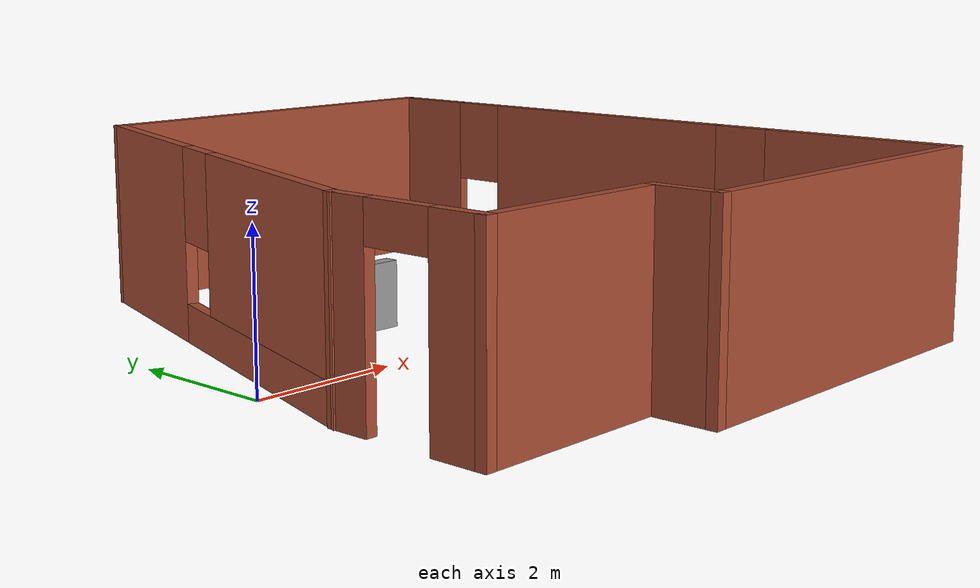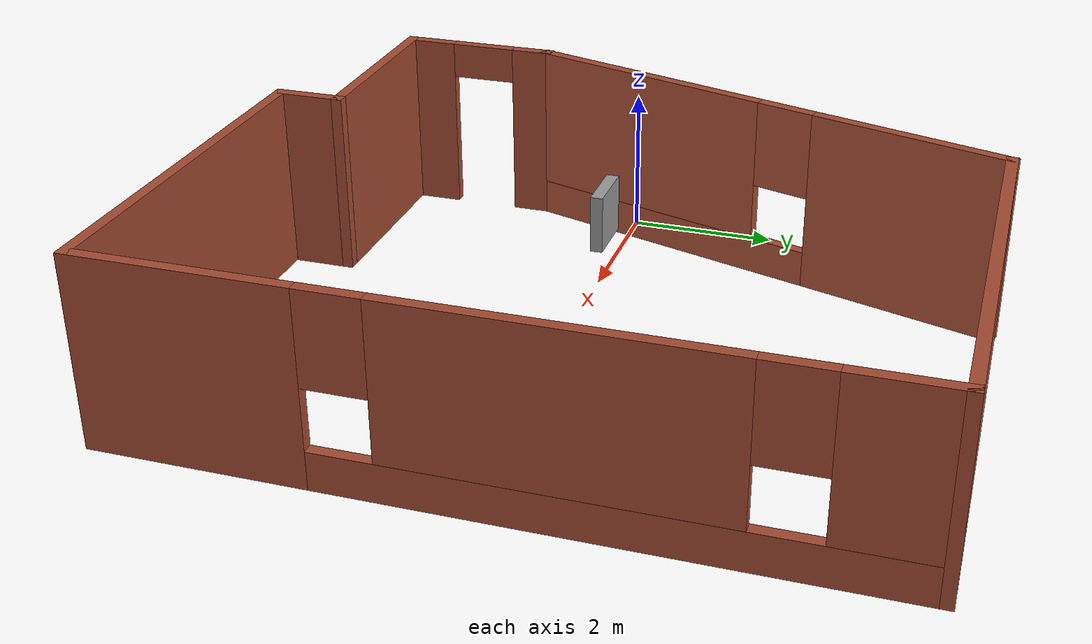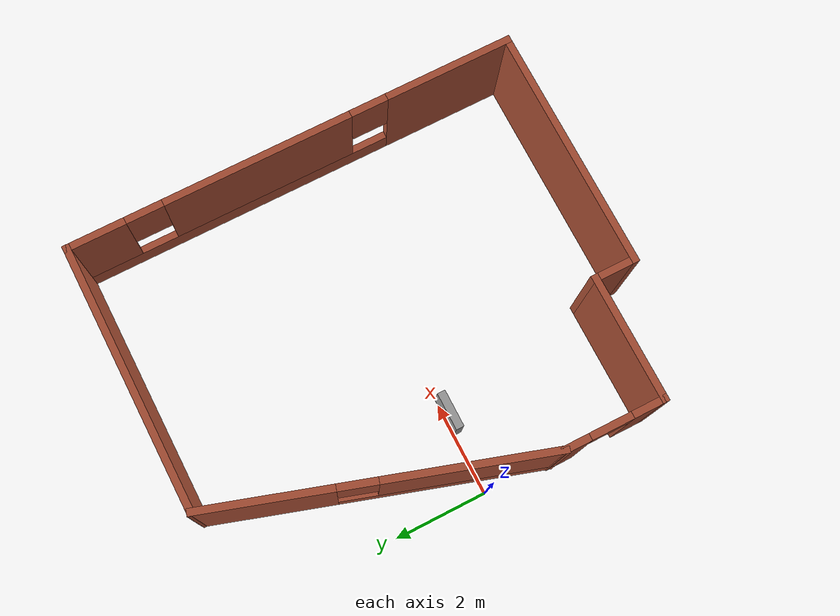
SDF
<?xml version='1.0'?>
<sdf version='1.6'>
  <model name='room'>
    <pose frame=''>3.75045 0.459552 0 0 -0 0</pose>
    <link name='Wall_2'>
      <collision name='Wall_2_Collision'>
        <geometry>
          <box>
            <size>5.25 0.15 2.5</size>
          </box>
        </geometry>
        <pose frame=''>0 0 1.25 0 -0 0</pose>
      </collision>
      <visual name='Wall_2_Visual'>
        <pose frame=''>0 0 1.25 0 -0 0</pose>
        <geometry>
          <box>
            <size>5.25 0.15 2.5</size>
          </box>
        </geometry>
        <material>
          <script>
            <uri>file://media/materials/scripts/gazebo.material</uri>
            <name>Gazebo/Bricks</name>
          </script>
          <ambient>1 1 1 1</ambient>
        </material>
        <meta>
          <layer>0</layer>
        </meta>
      </visual>
      <pose frame=''>1.30955 -4.80955 0 0 -0 3.14159</pose>
    </link>
    <link name='Wall_3'>
      <collision name='Wall_3_Collision'>
        <geometry>
          <box>
            <size>1 0.15 2.5</size>
          </box>
        </geometry>
        <pose frame=''>0 0 1.25 0 -0 0</pose>
      </collision>
      <visual name='Wall_3_Visual'>
        <pose frame=''>0 0 1.25 0 -0 0</pose>
        <geometry>
          <box>
            <size>1 0.15 2.5</size>
          </box>
        </geometry>
        <material>
          <script>
            <uri>file://media/materials/scripts/gazebo.material</uri>
            <name>Gazebo/Bricks</name>
          </script>
          <ambient>1 1 1 1</ambient>
        </material>
        <meta>
          <layer>0</layer>
        </meta>
      </visual>
      <pose frame=''>-1.24045 -4.38455 0 0 -0 1.5708</pose>
    </link>
    <link name='Wall_4'>
      <collision name='Wall_4_Collision'>
        <geometry>
          <box>
            <size>2.75 0.15 2.5</size>
          </box>
        </geometry>
        <pose frame=''>0 0 1.25 0 -0 0</pose>
      </collision>
      <visual name='Wall_4_Visual'>
        <pose frame=''>0 0 1.25 0 -0 0</pose>
        <geometry>
          <box>
            <size>2.75 0.15 2.5</size>
          </box>
        </geometry>
        <material>
          <script>
            <uri>file://media/materials/scripts/gazebo.material</uri>
            <name>Gazebo/Bricks</name>
          </script>
          <ambient>1 1 1 1</ambient>
        </material>
        <meta>
          <layer>0</layer>
        </meta>
      </visual>
      <pose frame=''>-2.54045 -3.95955 0 0 -0 3.14159</pose>
    </link>
    <link name='Wall_5'>
      <pose frame=''>-3.84045 -2.90955 0 0 -0 1.5708</pose>
      <visual name='Wall_5_Visual_0'>
        <pose frame=''>-0.7475 0 1.25 0 -0 0</pose>
        <geometry>
          <box>
            <size>0.755 0.15 2.5</size>
          </box>
        </geometry>
        <material>
          <script>
            <uri>file://media/materials/scripts/gazebo.material</uri>
            <name>Gazebo/Bricks</name>
          </script>
          <ambient>1 1 1 1</ambient>
        </material>
        <meta>
          <layer>0</layer>
        </meta>
      </visual>
      <collision name='Wall_5_Collision_0'>
        <geometry>
          <box>
            <size>0.755 0.15 2.5</size>
          </box>
        </geometry>
        <pose frame=''>-0.7475 0 1.25 0 -0 0</pose>
      </collision>
      <visual name='Wall_5_Visual_1'>
        <pose frame=''>0.8275 0 1.25 0 -0 0</pose>
        <geometry>
          <box>
            <size>0.595 0.15 2.5</size>
          </box>
        </geometry>
        <material>
          <script>
            <uri>file://media/materials/scripts/gazebo.material</uri>
            <name>Gazebo/Bricks</name>
          </script>
          <ambient>1 1 1 1</ambient>
        </material>
        <meta>
          <layer>0</layer>
        </meta>
      </visual>
      <collision name='Wall_5_Collision_1'>
        <geometry>
          <box>
            <size>0.595 0.15 2.5</size>
          </box>
        </geometry>
        <pose frame=''>0.8275 0 1.25 0 -0 0</pose>
      </collision>
      <visual name='Wall_5_Visual_2'>
        <pose frame=''>0.08 0 2.25 0 -0 0</pose>
        <geometry>
          <box>
            <size>0.9 0.15 0.5</size>
          </box>
        </geometry>
        <material>
          <script>
            <uri>file://media/materials/scripts/gazebo.material</uri>
            <name>Gazebo/Bricks</name>
          </script>
          <ambient>1 1 1 1</ambient>
        </material>
        <meta>
          <layer>0</layer>
        </meta>
      </visual>
      <collision name='Wall_5_Collision_2'>
        <geometry>
          <box>
            <size>0.9 0.15 0.5</size>
          </box>
        </geometry>
        <pose frame=''>0.08 0 2.25 0 -0 0</pose>
      </collision>
    </link>
    <link name='Wall_7'>
      <pose frame=''>3.85955 -0.009552 0 0 -0 1.5708</pose>
      <visual name='Wall_7_Visual_0'>
        <pose frame=''>-3.48231 0 1.25 0 -0 0</pose>
        <geometry>
          <box>
            <size>2.78538 0.15 2.5</size>
          </box>
        </geometry>
        <material>
          <script>
            <uri>file://media/materials/scripts/gazebo.material</uri>
            <name>Gazebo/Bricks</name>
          </script>
          <ambient>1 1 1 1</ambient>
        </material>
        <meta>
          <layer>0</layer>
        </meta>
      </visual>
      <collision name='Wall_7_Collision_0'>
        <geometry>
          <box>
            <size>2.78538 0.15 2.5</size>
          </box>
        </geometry>
        <pose frame=''>-3.48231 0 1.25 0 -0 0</pose>
      </collision>
      <visual name='Wall_7_Visual_1'>
        <pose frame=''>1.39269 0 0.25 0 -0 0</pose>
        <geometry>
          <box>
            <size>6.96462 0.15 0.5</size>
          </box>
        </geometry>
        <material>
          <script>
            <uri>file://media/materials/scripts/gazebo.material</uri>
            <name>Gazebo/Bricks</name>
          </script>
          <ambient>1 1 1 1</ambient>
        </material>
        <meta>
          <layer>0</layer>
        </meta>
      </visual>
      <collision name='Wall_7_Collision_1'>
        <geometry>
          <box>
            <size>6.96462 0.15 0.5</size>
          </box>
        </geometry>
        <pose frame=''>1.39269 0 0.25 0 -0 0</pose>
      </collision>
      <visual name='Wall_7_Visual_2'>
        <pose frame=''>0.742305 0 1.5 0 -0 0</pose>
        <geometry>
          <box>
            <size>4.06385 0.15 2</size>
          </box>
        </geometry>
        <material>
          <script>
            <uri>file://media/materials/scripts/gazebo.material</uri>
            <name>Gazebo/Bricks</name>
          </script>
          <ambient>1 1 1 1</ambient>
        </material>
        <meta>
          <layer>0</layer>
        </meta>
      </visual>
      <collision name='Wall_7_Collision_2'>
        <geometry>
          <box>
            <size>4.06385 0.15 2</size>
          </box>
        </geometry>
        <pose frame=''>0.742305 0 1.5 0 -0 0</pose>
      </collision>
      <visual name='Wall_7_Visual_3'>
        <pose frame=''>4.22461 0 1.5 0 -0 0</pose>
        <geometry>
          <box>
            <size>1.30077 0.15 2</size>
          </box>
        </geometry>
        <material>
          <script>
            <uri>file://media/materials/scripts/gazebo.material</uri>
            <name>Gazebo/Bricks</name>
          </script>
          <ambient>1 1 1 1</ambient>
        </material>
        <meta>
          <layer>0</layer>
        </meta>
      </visual>
      <collision name='Wall_7_Collision_3'>
        <geometry>
          <box>
            <size>1.30077 0.15 2</size>
          </box>
        </geometry>
        <pose frame=''>4.22461 0 1.5 0 -0 0</pose>
      </collision>
      <visual name='Wall_7_Visual_4'>
        <pose frame=''>-1.68962 0 1.9 0 -0 0</pose>
        <geometry>
          <box>
            <size>0.8 0.15 1.2</size>
          </box>
        </geometry>
        <material>
          <script>
            <uri>file://media/materials/scripts/gazebo.material</uri>
            <name>Gazebo/Bricks</name>
          </script>
          <ambient>1 1 1 1</ambient>
        </material>
        <meta>
          <layer>0</layer>
        </meta>
      </visual>
      <collision name='Wall_7_Collision_4'>
        <geometry>
          <box>
            <size>0.8 0.15 1.2</size>
          </box>
        </geometry>
        <pose frame=''>-1.68962 0 1.9 0 -0 0</pose>
      </collision>
      <visual name='Wall_7_Visual_5'>
        <pose frame=''>3.17423 0 1.9 0 -0 0</pose>
        <geometry>
          <box>
            <size>0.8 0.15 1.2</size>
          </box>
        </geometry>
        <material>
          <script>
            <uri>file://media/materials/scripts/gazebo.material</uri>
            <name>Gazebo/Bricks</name>
          </script>
          <ambient>1 1 1 1</ambient>
        </material>
        <meta>
          <layer>0</layer>
        </meta>
      </visual>
      <collision name='Wall_7_Collision_5'>
        <geometry>
          <box>
            <size>0.8 0.15 1.2</size>
          </box>
        </geometry>
        <pose frame=''>3.17423 0 1.9 0 -0 0</pose>
      </collision>
    </link>
    <link name='Wall_8'>
      <collision name='Wall_8_Collision'>
        <geometry>
          <box>
            <size>5.75 0.15 2.5</size>
          </box>
        </geometry>
        <pose frame=''>0 0 1.25 0 -0 0</pose>
      </collision>
      <visual name='Wall_8_Visual'>
        <pose frame=''>0 0 1.25 0 -0 0</pose>
        <geometry>
          <box>
            <size>5.75 0.15 2.5</size>
          </box>
        </geometry>
        <material>
          <script>
            <uri>file://media/materials/scripts/gazebo.material</uri>
            <name>Gazebo/Bricks</name>
          </script>
          <ambient>1 1 1 1</ambient>
        </material>
        <meta>
          <layer>0</layer>
        </meta>
      </visual>
      <pose frame=''>1.05955 4.79045 0 0 -0 3.14159</pose>
    </link>
    <link name='Wall_9'>
      <pose frame=''>-2.79045 1.46545 0 0 -0 -1.87668</pose>
      <visual name='Wall_9_Visual_0'>
        <pose frame=''>-2.18179 0 1.25 0 -0 0</pose>
        <geometry>
          <box>
            <size>2.76013 0.15 2.5</size>
          </box>
        </geometry>
        <material>
          <script>
            <uri>file://media/materials/scripts/gazebo.material</uri>
            <name>Gazebo/Bricks</name>
          </script>
          <ambient>1 1 1 1</ambient>
        </material>
        <meta>
          <layer>0</layer>
        </meta>
      </visual>
      <collision name='Wall_9_Collision_0'>
        <geometry>
          <box>
            <size>2.76013 0.15 2.5</size>
          </box>
        </geometry>
        <pose frame=''>-2.18179 0 1.25 0 -0 0</pose>
      </collision>
      <visual name='Wall_9_Visual_1'>
        <pose frame=''>1.38006 0 0.25 0 -0 0</pose>
        <geometry>
          <box>
            <size>4.36357 0.15 0.5</size>
          </box>
        </geometry>
        <material>
          <script>
            <uri>file://media/materials/scripts/gazebo.material</uri>
            <name>Gazebo/Bricks</name>
          </script>
          <ambient>1 1 1 1</ambient>
        </material>
        <meta>
          <layer>0</layer>
        </meta>
      </visual>
      <collision name='Wall_9_Collision_1'>
        <geometry>
          <box>
            <size>4.36357 0.15 0.5</size>
          </box>
        </geometry>
        <pose frame=''>1.38006 0 0.25 0 -0 0</pose>
      </collision>
      <visual name='Wall_9_Visual_2'>
        <pose frame=''>1.78006 0 1.5 0 -0 0</pose>
        <geometry>
          <box>
            <size>3.56357 0.15 2</size>
          </box>
        </geometry>
        <material>
          <script>
            <uri>file://media/materials/scripts/gazebo.material</uri>
            <name>Gazebo/Bricks</name>
          </script>
          <ambient>1 1 1 1</ambient>
        </material>
        <meta>
          <layer>0</layer>
        </meta>
      </visual>
      <collision name='Wall_9_Collision_2'>
        <geometry>
          <box>
            <size>3.56357 0.15 2</size>
          </box>
        </geometry>
        <pose frame=''>1.78006 0 1.5 0 -0 0</pose>
      </collision>
      <visual name='Wall_9_Visual_3'>
        <pose frame=''>-0.401722 0 1.9 0 -0 0</pose>
        <geometry>
          <box>
            <size>0.8 0.15 1.2</size>
          </box>
        </geometry>
        <material>
          <script>
            <uri>file://media/materials/scripts/gazebo.material</uri>
            <name>Gazebo/Bricks</name>
          </script>
          <ambient>1 1 1 1</ambient>
        </material>
        <meta>
          <layer>0</layer>
        </meta>
      </visual>
      <collision name='Wall_9_Collision_3'>
        <geometry>
          <box>
            <size>0.8 0.15 1.2</size>
          </box>
        </geometry>
        <pose frame=''>-0.401722 0 1.9 0 -0 0</pose>
      </collision>
    </link>
    <link name='Window_0'>
      <collision name='Window_0_Collision'>
        <geometry>
          <box>
            <size>0.8 0.17 0.8</size>
          </box>
        </geometry>
        <pose frame=''>0 0 0.4 0 -0 0</pose>
      </collision>
      <visual name='Window_0_Visual'>
        <pose frame=''>0 0 0.4 0 -0 0</pose>
        <geometry>
          <box>
            <size>0.8 0.17 0.8</size>
          </box>
        </geometry>
        <material>
          <script>
            <uri>file://media/materials/scripts/gazebo.material</uri>
            <name>Gazebo/Grey</name>
          </script>
        </material>
      </visual>
      <pose frame=''>-2.08561 -0.475561 0.5 0 -0 0</pose>
    </link>
    <static>1</static>
  </model>
</sdf>
